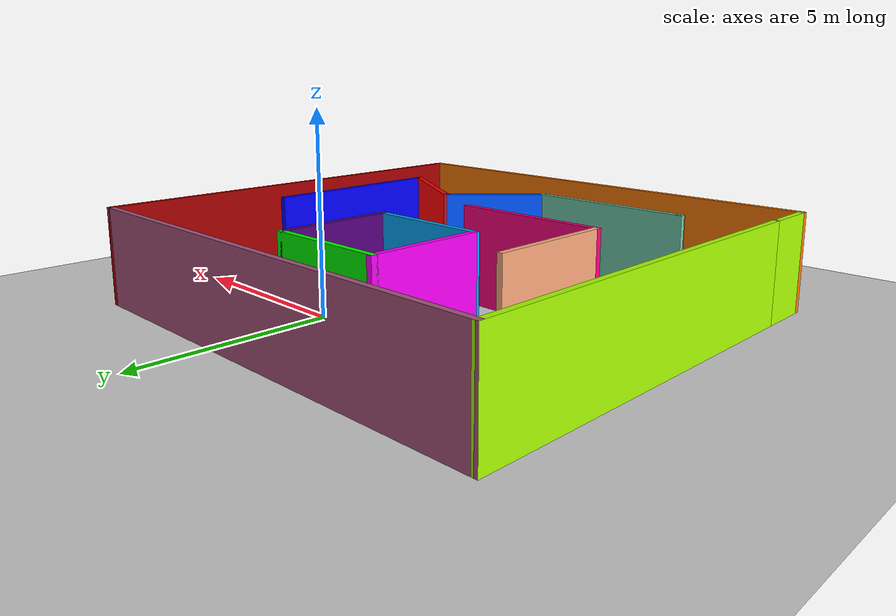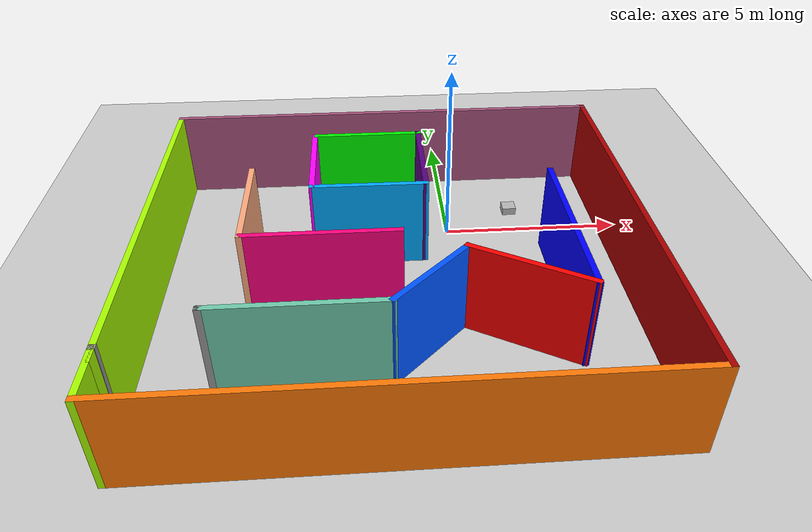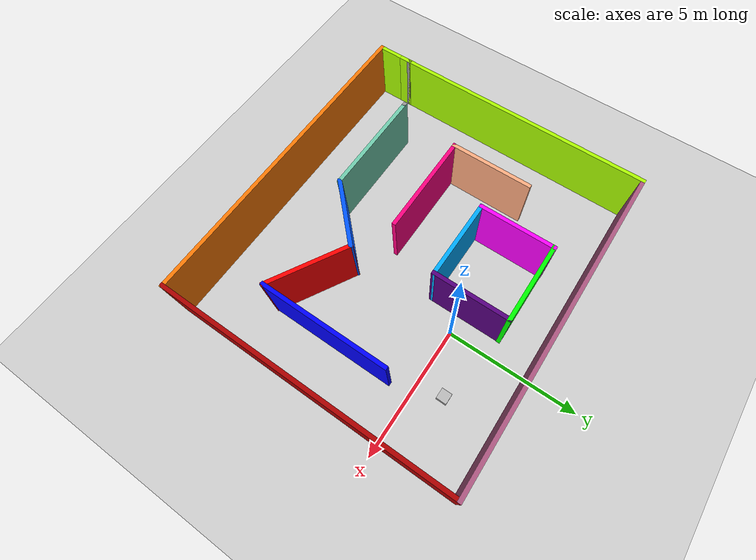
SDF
<sdf version="1.6">
 <world name="default">
  <light name="sun" type="directional">
   <pose>0 0 10 0 -0 0</pose>
   <diffuse>0.8 0.8 0.8 1</diffuse>
   <specular>0.1 0.1 0.1 1</specular>
   <attenuation>
    <range>1000</range>
    <constant>0.9</constant>
    <linear>0.01</linear>
    <quadratic>0.001</quadratic>
   </attenuation>
   <direction>-0.5 0.5 -1</direction>
  </light>
  <model name="ground_plane">
   <static>1</static>
   <link name="link">
    <collision name="collision">
     <geometry><plane><normal>0 0 1</normal><size>100 100</size></plane></geometry>
     <surface><friction><ode><mu>100</mu><mu2>50</mu2></ode></friction></surface>
    </collision>
    <visual name="visual">
     <cast_shadows>0</cast_shadows>
     <geometry><plane><normal>0 0 1</normal><size>100 100</size></plane></geometry>
     <material>
      <script><uri>file://media/materials/scripts/gazebo.material</uri><name>Gazebo/Grey</name></script>
     </material>
    </visual>
   </link>
  </model>
  <gravity>0 0 -9.8</gravity>
  <magnetic_field>6e-06 2.3e-05 -4.2e-05</magnetic_field>
  <atmosphere type="adiabatic"/>
  <physics name="default_physics" default="0" type="ode">
   <max_step_size>0.001</max_step_size>
   <real_time_factor>1</real_time_factor>
   <real_time_update_rate>1000</real_time_update_rate>
  </physics>
  <scene><ambient>0.4 0.4 0.4 1</ambient><background>0.7 0.7 0.7 1</background><shadows>1</shadows></scene>
  <spherical_coordinates>
   <surface_model>EARTH_WGS84</surface_model>
   <latitude_deg>0</latitude_deg>
   <longitude_deg>0</longitude_deg>
   <elevation>0</elevation>
   <heading_deg>0</heading_deg>
  </spherical_coordinates>
  <model name="simple_maze">
   <pose>-1.66125 -2.68285 0 0 -0 0</pose>
   <link name="Wall_0">
    <collision name="Wall_0_Collision">
     <geometry><box><size>4 0.15 2.5</size></box></geometry>
     <pose>0 0 1.25 0 -0 0</pose>
    </collision>
    <visual name="Wall_0_Visual">
     <pose>0 0 1.25 0 -0 0</pose>
     <geometry><box><size>4 0.15 2.5</size></box></geometry>
     <material>
      <script><uri>file://media/materials/scripts/gazebo.material</uri><name>Gazebo/Grey</name></script>
      <ambient>1 0 0.498039 1</ambient>
     </material>
    </visual>
    <pose>-1.81375 -0.707145 0 0 -0 3.14159</pose>
   </link>
   <link name="Wall_1">
    <collision name="Wall_1_Collision">
     <geometry><box><size>3.25 0.15 2.5</size></box></geometry>
     <pose>0 0 1.25 0 -0 0</pose>
    </collision>
    <visual name="Wall_1_Visual">
     <pose>0 0 1.25 0 -0 0</pose>
     <geometry><box><size>3.25 0.15 2.5</size></box></geometry>
     <material>
      <script><uri>file://media/materials/scripts/gazebo.material</uri><name>Gazebo/Grey</name></script>
      <ambient>1 0.666667 0.498039 1</ambient>
     </material>
    </visual>
    <pose>-3.73875 0.842855 0 0 -0 1.5708</pose>
   </link>
   <link name="Wall_11">
    <collision name="Wall_11_Collision">
     <geometry><box><size>3 0.15 2.5</size></box></geometry>
     <pose>0 0 1.25 0 -0 0</pose>
    </collision>
    <visual name="Wall_11_Visual">
     <pose>0 0 1.25 0 -0 0</pose>
     <geometry><box><size>3 0.15 2.5</size></box></geometry>
     <material>
      <script><uri>file://media/materials/scripts/gazebo.material</uri><name>Gazebo/Grey</name></script>
      <ambient>1 0 1 1</ambient>
     </material>
    </visual>
    <pose>-2.09752 2.84453 0 0 -0 1.5708</pose>
   </link>
   <link name="Wall_12">
    <collision name="Wall_12_Collision">
     <geometry><box><size>3.1673 0.15 2.5</size></box></geometry>
     <pose>0 0 1.25 0 -0 0</pose>
    </collision>
    <visual name="Wall_12_Visual">
     <pose>0 0 1.25 0 -0 0</pose>
     <geometry><box><size>3.1673 0.15 2.5</size></box></geometry>
     <material>
      <script><uri>file://media/materials/scripts/gazebo.material</uri><name>Gazebo/Grey</name></script>
      <ambient>0 1 0 1</ambient>
     </material>
    </visual>
    <pose>-0.588875 4.25432 0 0 -0 0</pose>
   </link>
   <link name="Wall_13">
    <collision name="Wall_13_Collision">
     <geometry><box><size>3 0.15 2.5</size></box></geometry>
     <pose>0 0 1.25 0 -0 0</pose>
    </collision>
    <visual name="Wall_13_Visual">
     <pose>0 0 1.25 0 -0 0</pose>
     <geometry><box><size>3 0.15 2.5</size></box></geometry>
     <material>
      <script><uri>file://media/materials/scripts/gazebo.material</uri><name>Gazebo/Grey</name></script>
      <ambient>0.333333 0 0.498039 1</ambient>
     </material>
    </visual>
    <pose>0.904564 2.82932 0 0 0 -1.5708</pose>
   </link>
   <link name="Wall_17">
    <collision name="Wall_17_Collision">
     <geometry><box><size>10.5 0.15 2.5</size></box></geometry>
     <pose>0 0 1.25 0 -0 0</pose>
    </collision>
    <visual name="Wall_17_Visual">
     <pose>0 0 1.25 0 -0 0</pose>
     <geometry><box><size>10.5 0.15 2.5</size></box></geometry>
     <material>
      <script><uri>file://media/materials/scripts/gazebo.material</uri><name>Gazebo/Grey</name></script>
      <ambient>0.666667 1 0 1</ambient>
     </material>
    </visual>
    <pose>-6.175 0.5 0 0 -0 1.5708</pose>
   </link>
   <link name="Wall_18">
    <collision name="Wall_18_Collision">
     <geometry><box><size>12.5 0.15 2.5</size></box></geometry>
     <pose>0 0 1.25 0 -0 0</pose>
    </collision>
    <visual name="Wall_18_Visual">
     <pose>0 0 1.25 0 -0 0</pose>
     <geometry><box><size>12.5 0.15 2.5</size></box></geometry>
     <material>
      <script><uri>file://media/materials/scripts/gazebo.material</uri><name>Gazebo/Grey</name></script>
      <ambient>0.666667 0.333333 0.498039 1</ambient>
     </material>
    </visual>
    <pose>0 5.675 0 0 -0 0</pose>
   </link>
   <link name="Wall_19">
    <collision name="Wall_19_Collision">
     <geometry><box><size>11.5 0.15 2.5</size></box></geometry>
     <pose>0 0 1.25 0 -0 0</pose>
    </collision>
    <visual name="Wall_19_Visual">
     <pose>0 0 1.25 0 -0 0</pose>
     <geometry><box><size>11.5 0.15 2.5</size></box></geometry>
     <material>
      <script><uri>file://media/materials/scripts/gazebo.material</uri><name>Gazebo/Grey</name></script>
      <ambient>0.666667 0 0 1</ambient>
     </material>
    </visual>
    <pose>6.175 0 0 0 0 -1.5708</pose>
   </link>
   <link name="Wall_20">
    <collision name="Wall_20_Collision">
     <geometry><box><size>12.5 0.15 2.5</size></box></geometry>
     <pose>0 0 1.25 0 -0 0</pose>
    </collision>
    <visual name="Wall_20_Visual">
     <pose>0 0 1.25 0 -0 0</pose>
     <geometry><box><size>12.5 0.15 2.5</size></box></geometry>
     <material>
      <script><uri>file://media/materials/scripts/gazebo.material</uri><name>Gazebo/Grey</name></script>
      <ambient>0.996078 0.47451 0.0196078 1</ambient>
     </material>
    </visual>
    <pose>0 -5.675 0 0 -0 3.14159</pose>
   </link>
   <link name="Wall_21">
    <collision name="Wall_21_Collision">
     <geometry><box><size>1.5 0.15 2.5</size></box></geometry>
     <pose>0 0 1.25 0 -0 0</pose>
    </collision>
    <visual name="Wall_21_Visual">
     <pose>0 0 1.25 0 -0 0</pose>
     <geometry><box><size>1.5 0.15 2.5</size></box></geometry>
     <material>
      <script><uri>file://media/materials/scripts/gazebo.material</uri><name>Gazebo/Grey</name></script>
      <ambient>0.666667 1 0 1</ambient>
     </material>
    </visual>
    <pose>-6.175 -5 0 0 -0 1.5708</pose>
   </link>
   <link name="Wall_22">
    <collision name="Wall_22_Collision">
     <geometry><box><size>0.16 0.15 2.5</size></box></geometry>
     <pose>0 0 1.25 0 -0 0</pose>
    </collision>
    <visual name="Wall_22_Visual">
     <pose>0 0 1.25 0 -0 0</pose>
     <geometry><box><size>0.16 0.15 2.5</size></box></geometry>
     <material>
      <script><uri>file://media/materials/scripts/gazebo.material</uri><name>Gazebo/Grey</name></script>
      <ambient>1 1 1 1</ambient>
     </material>
    </visual>
    <pose>-6.17 -4.325 0 0 -0 0</pose>
   </link>
   <link name="Wall_23">
    <collision name="Wall_23_Collision">
     <geometry><box><size>0.16 0.15 2.5</size></box></geometry>
     <pose>0 0 1.25 0 -0 0</pose>
    </collision>
    <visual name="Wall_23_Visual">
     <pose>0 0 1.25 0 -0 0</pose>
     <geometry><box><size>0.16 0.15 2.5</size></box></geometry>
     <material>
      <script><uri>file://media/materials/scripts/gazebo.material</uri><name>Gazebo/Grey</name></script>
      <ambient>0.666667 1 0 1</ambient>
     </material>
    </visual>
    <pose>-6.17 -4.325 0 0 -0 3.14159</pose>
   </link>
   <link name="Wall_25">
    <collision name="Wall_25_Collision">
     <geometry><box><size>3.15213 0.15 2.5</size></box></geometry>
     <pose>0 0 1.25 0 -0 0</pose>
    </collision>
    <visual name="Wall_25_Visual">
     <pose>0 0 1.25 0 -0 0</pose>
     <geometry><box><size>3.15213 0.15 2.5</size></box></geometry>
     <material>
      <script><uri>file://media/materials/scripts/gazebo.material</uri><name>Gazebo/Grey</name></script>
      <ambient>0 0.666667 1 1</ambient>
     </material>
    </visual>
    <pose>-0.59648 1.41192 0 0 0 -0.005066</pose>
   </link>
   <link name="Wall_3">
    <collision name="Wall_3_Collision">
     <geometry><box><size>5 0.15 2.5</size></box></geometry>
     <pose>0 0 1.25 0 -0 0</pose>
    </collision>
    <visual name="Wall_3_Visual">
     <pose>0 0 1.25 0 -0 0</pose>
     <geometry><box><size>5 0.15 2.5</size></box></geometry>
     <material>
      <script><uri>file://media/materials/scripts/gazebo.material</uri><name>Gazebo/Grey</name></script>
      <ambient>0 0 1 1</ambient>
     </material>
    </visual>
    <pose>4.32372 -0.577483 0 0 0 -1.5708</pose>
   </link>
   <link name="Wall_4">
    <collision name="Wall_4_Collision">
     <geometry><box><size>3.25 0.15 2.5</size></box></geometry>
     <pose>0 0 1.25 0 -0 0</pose>
    </collision>
    <visual name="Wall_4_Visual">
     <pose>0 0 1.25 0 -0 0</pose>
     <geometry><box><size>3.25 0.15 2.5</size></box></geometry>
     <material>
      <script><uri>file://media/materials/scripts/gazebo.material</uri><name>Gazebo/Grey</name></script>
      <ambient>1 0 0 1</ambient>
     </material>
    </visual>
    <pose>2.98138 -2.22748 0 0 -0 2.61799</pose>
   </link>
   <link name="Wall_5">
    <collision name="Wall_5_Collision">
     <geometry><box><size>2.75 0.15 2.5</size></box></geometry>
     <pose>0 0 1.25 0 -0 0</pose>
    </collision>
    <visual name="Wall_5_Visual">
     <pose>0 0 1.25 0 -0 0</pose>
     <geometry><box><size>2.75 0.15 2.5</size></box></geometry>
     <material>
      <script><uri>file://media/materials/scripts/gazebo.material</uri><name>Gazebo/Grey</name></script>
      <ambient>0 0.333333 1 1</ambient>
     </material>
    </visual>
    <pose>0.719802 -2.37172 0 0 0 -2.35619</pose>
   </link>
   <link name="Wall_6">
    <collision name="Wall_6_Collision">
     <geometry><box><size>4.25 0.15 2.5</size></box></geometry>
     <pose>0 0 1.25 0 -0 0</pose>
    </collision>
    <visual name="Wall_6_Visual">
     <pose>0 0 1.25 0 -0 0</pose>
     <geometry><box><size>4.25 0.15 2.5</size></box></geometry>
     <material>
      <script><uri>file://media/materials/scripts/gazebo.material</uri><name>Gazebo/Grey</name></script>
      <ambient>0.435294 0.796078 0.67451 1</ambient>
     </material>
    </visual>
    <pose>-2.24944 -3.29096 0 0 -0 3.14159</pose>
   </link>
   <link name="Wall_7">
    <collision name="Wall_7_Collision">
     <geometry><box><size>0.16 0.15 2.5</size></box></geometry>
     <pose>0 0 1.25 0 -0 0</pose>
    </collision>
    <visual name="Wall_7_Visual">
     <pose>0 0 1.25 0 -0 0</pose>
     <geometry><box><size>0.16 0.15 2.5</size></box></geometry>
     <material>
      <script><uri>file://media/materials/scripts/gazebo.material</uri><name>Gazebo/Grey</name></script>
      <ambient>1 1 1 1</ambient>
     </material>
    </visual>
    <pose>-4.29444 -3.29096 0 0 -0 0</pose>
   </link>
   <link name="Wall_8">
    <collision name="Wall_8_Collision">
     <geometry><box><size>0.16 0.15 2.5</size></box></geometry>
     <pose>0 0 1.25 0 -0 0</pose>
    </collision>
    <visual name="Wall_8_Visual">
     <pose>0 0 1.25 0 -0 0</pose>
     <geometry><box><size>0.16 0.15 2.5</size></box></geometry>
     <material>
      <script><uri>file://media/materials/scripts/gazebo.material</uri><name>Gazebo/Grey</name></script>
      <ambient>1 1 1 1</ambient>
     </material>
    </visual>
    <pose>-4.29444 -3.29096 0 0 -0 3.14159</pose>
   </link>
   <static>1</static>
  </model>
  <model name="box1">
   <pose>2 1 0 0 0 0</pose>
   <link name="link">
    <collision name="collision"><geometry><box><size>0.4 0.4 0.4</size></box></geometry></collision>
    <visual name="visual"><geometry><box><size>0.4 0.4 0.4</size></box></geometry></visual>
   </link>
   <plugin name="push_animate_1" filename="libanimated_box.so"/>
  </model>
 </world>
</sdf>
